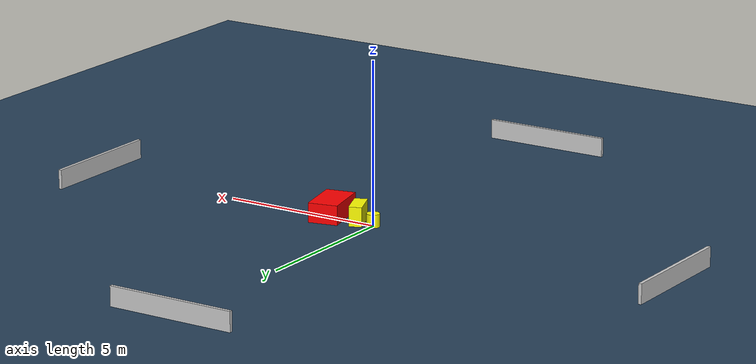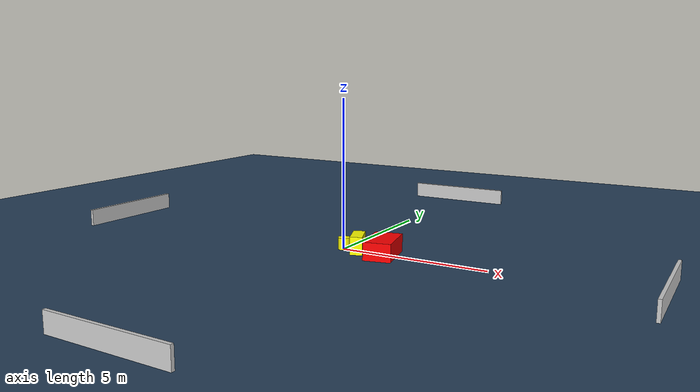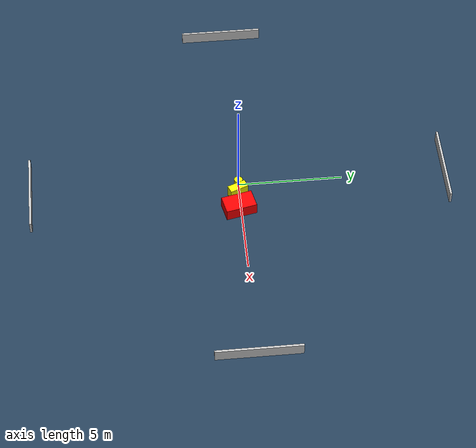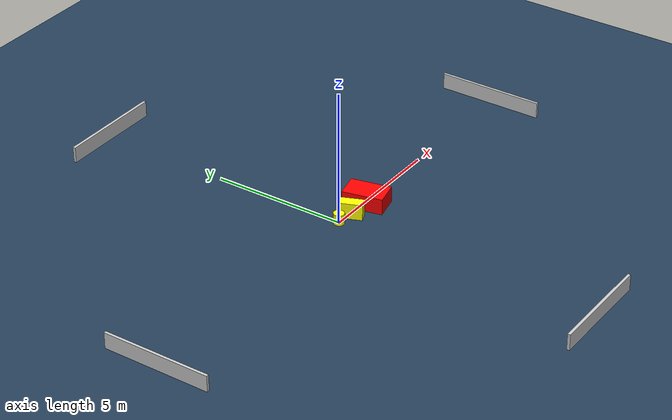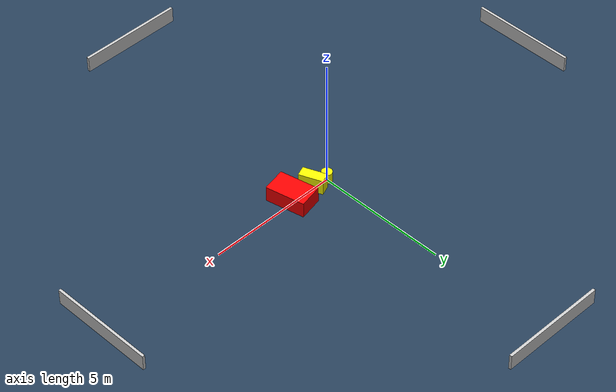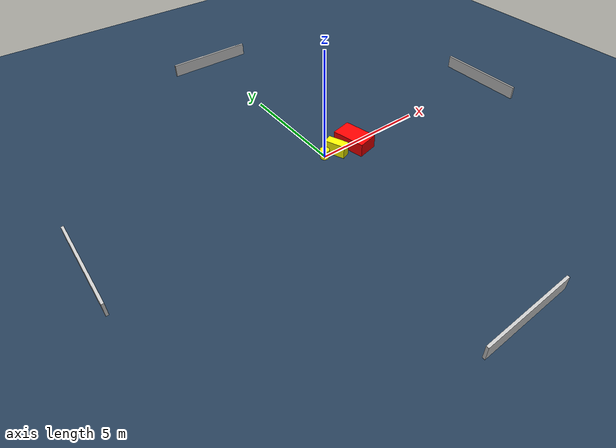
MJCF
<?xml version="1.0" ?>
<mujoco model="generated_environment">
  <option timestep="0.01" integrator="RK4" cone="elliptic"/>
  <default>
    <geom density="1"/>
  </default>
  <asset>
    <texture builtin="gradient" height="3072" name="skybox" rgb1="0.3 0.5 0.7" rgb2="0 0 0" type="skybox" width="512"/>
    <texture builtin="checker" height="300" name="groundplane" rgb1="0.2 0.3 0.4" rgb2="0.1 0.2 0.3" type="2d" width="300"/>
    <material name="groundplane" reflectance="0.2" texrepeat="5 5" texture="groundplane"/>
  </asset>
  <worldbody>
    <light dir="0 0 -1" directional="true" pos="0 0 1.5"/>
    <geom condim="3" friction="0.5 0.005 0.001" material="groundplane" name="floor" pos="0 0 0" size="0 0 0.05" type="plane"/>
    <body name="walls">
      <geom name="wall_1" condim="4" pos="-10.0 0.0 0.3" rgba="0.800000011920929 0.800000011920929 0.800000011920929 1.0" size="0.05 2.0 0.3" type="box"/>
      <geom name="wall_2" condim="4" pos="10.0 0.0 0.3" rgba="0.800000011920929 0.800000011920929 0.800000011920929 1.0" size="0.05 2.0 0.3" type="box"/>
      <geom name="wall_3" condim="4" pos="0.0 -10.0 0.3" rgba="0.800000011920929 0.800000011920929 0.800000011920929 1.0" size="2.0 0.05 0.3" type="box"/>
      <geom name="wall_4" condim="4" pos="0.0 10.0 0.3" rgba="0.800000011920929 0.800000011920929 0.800000011920929 1.0" size="2.0 0.05 0.3" type="box"/>
    </body>
    <body name="robot">
      <joint name="joint_x" type="slide" pos="0 0 0" axis="1 0 0"/>
      <joint name="joint_y" type="slide" pos="0 0 0" axis="0 1 0"/>
      <geom name="robot" type="cylinder" pos="0.0 0.0 0.2" size="0.2 0.2 0.0" mass="5.0" friction="1.0 0.005 0.0001" condim="4" rgba="1.0 1.0 0.0 1.0"/>
    </body>
    <body name="obstacle_1_movable">
      <geom name="obstacle_1_movable" condim="4" pos="0.5798156890193694 -0.08260178226129075 0.3" euler="0 0 202.11086526868195" friction="0.0 0.005 0.001" rgba="1.0 1.0 0.0 1.0" size="0.20018107771532556 0.452959415169355 0.3" type="box" mass="0.1"/>
      <joint type="free"/>
    </body>
    <body name="obstacle_2_static">
      <geom name="obstacle_2_static" condim="4" pos="1.5267965319131283 -0.11030145850072269 0.3" euler="0 0 12.300200037520153" friction="0.0 0.005 0.001" rgba="1.0 0.0 0.0 1.0" size="0.45638164959572536 0.7449856006372695 0.3" type="box"/>
    </body>
  </worldbody>
  <actuator>
    <motor name="actuator_x" joint="joint_x" gear="1" ctrlrange="-1 1"/>
    <motor name="actuator_y" joint="joint_y" gear="1" ctrlrange="-1 1"/>
  </actuator>
</mujoco>
